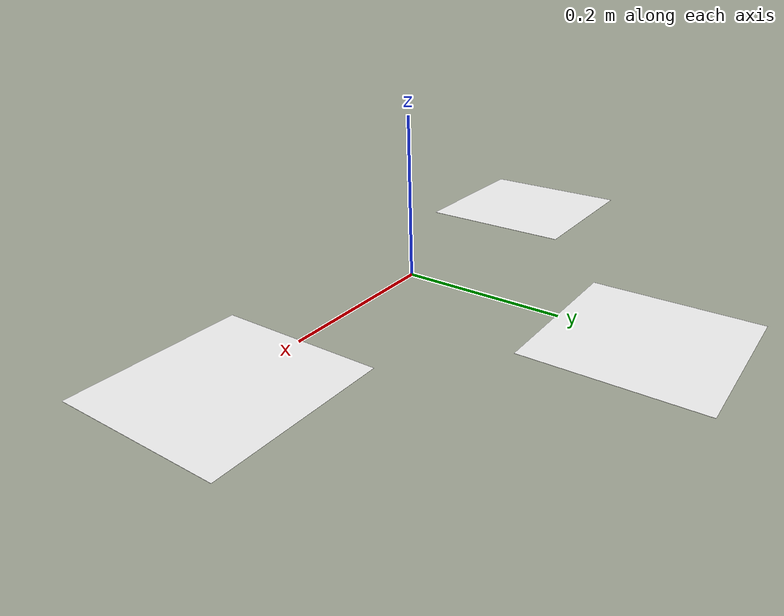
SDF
<?xml version="1.0" encoding="UTF-8"?>
<sdf version='1.9'>
  <model name='docking_base'>
    <static>true</static>
    <pose>0 0 0.001 0 0 0</pose>
    <link name='marker_1'>
      <pose>0.3 0 0.001 0 0 0</pose>
      <visual name='base_visual'>
        <geometry>
          <plane>
            <normal>0 0 1</normal>
            <size>0.2 0.2</size>
          </plane>
        </geometry>
        <material>
          <diffuse>1 1 1 1</diffuse>
          <specular>0.4 0.4 0.4 1</specular>
          <pbr>
            <metal>
              <albedo_map>model://agriwing/docking_base/aruco1.png</albedo_map>
            </metal>
          </pbr>
        </material>
      </visual>
    </link>
    <link name='marker_2'>
      <pose>0 0.3 0.001 0 0 0</pose>
      <visual name='base_visual'>
        <geometry>
          <plane>
            <normal>0 0 1</normal>
            <size>0.2 0.2</size>
          </plane>
        </geometry>
        <material>
          <diffuse>1 1 1 1</diffuse>
          <specular>0.4 0.4 0.4 1</specular>
          <pbr>
            <metal>
              <albedo_map>model://agriwing/docking_base/aruco2.png</albedo_map>
            </metal>
          </pbr>
        </material>
      </visual>
    </link>
    <link name='marker_3'>
      <pose>-0.3 0 0.001 0 0 0</pose>
      <visual name='base_visual'>
        <geometry>
          <plane>
            <normal>0 0 1</normal>
            <size>0.2 0.2</size>
          </plane>
        </geometry>
        <material>
          <diffuse>1 1 1 1</diffuse>
          <specular>0.4 0.4 0.4 1</specular>
          <pbr>
            <metal>
              <albedo_map>model://agriwing/docking_base/aruco3.png</albedo_map>
            </metal>
          </pbr>
        </material>
      </visual>
    </link>
  </model>
</sdf>
